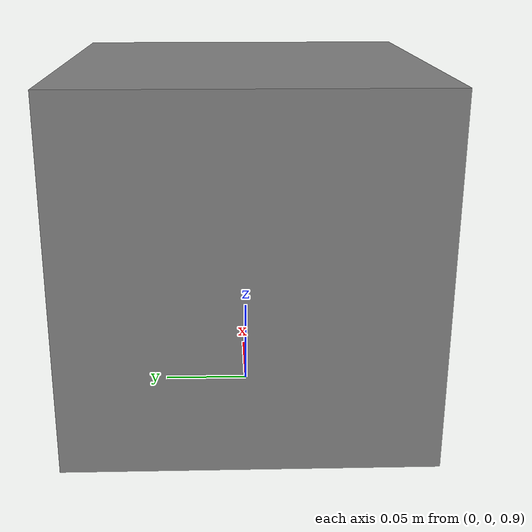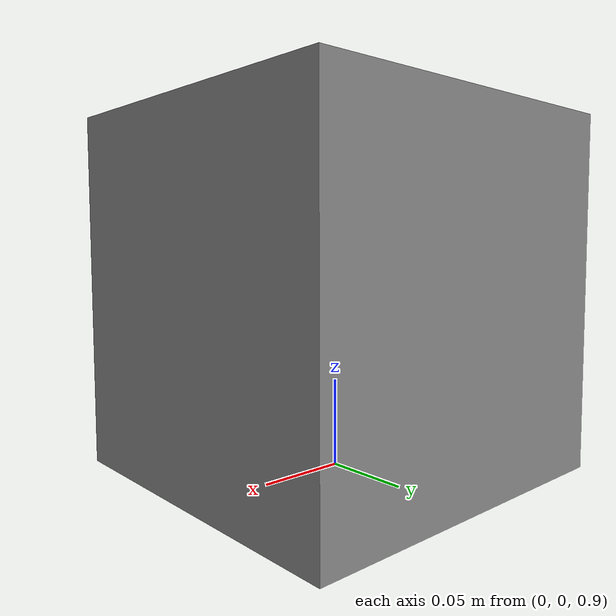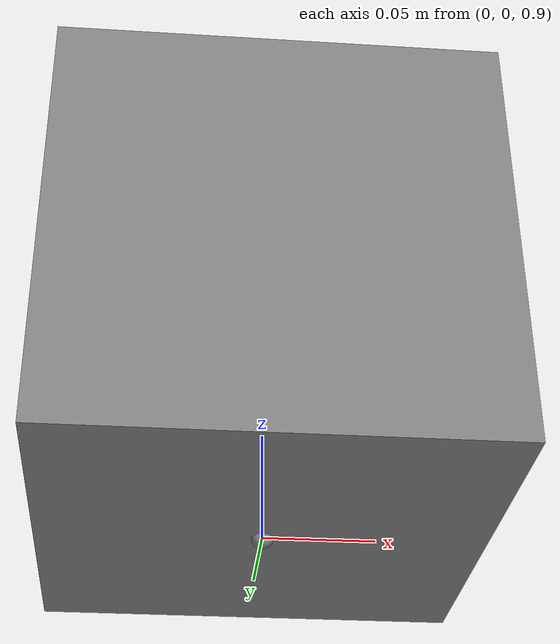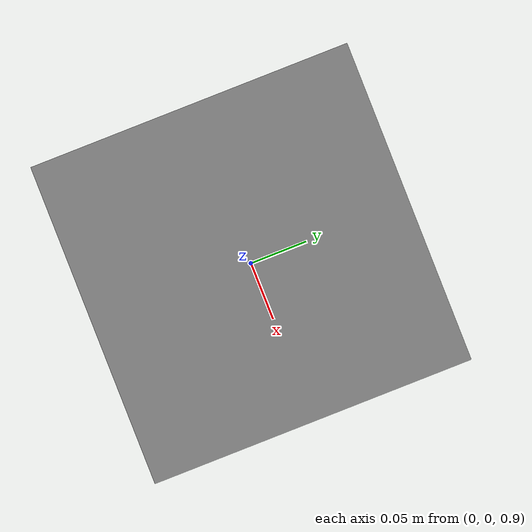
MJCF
<mujoco>
  <worldbody>
    <geom name="ground" type="plane" size="1 1 0.1"/>
    <body name="box" pos="0 0 1">
      <geom name="box_geom" type="box" size="0.1 0.1 0.1" mass="1"/>
      <site name="force_site" pos="0 0 -0.1"/>
    </body>
  </worldbody>

  <sensor>
    <force name="test_force" site="force_site"/>
  </sensor>
</mujoco>
